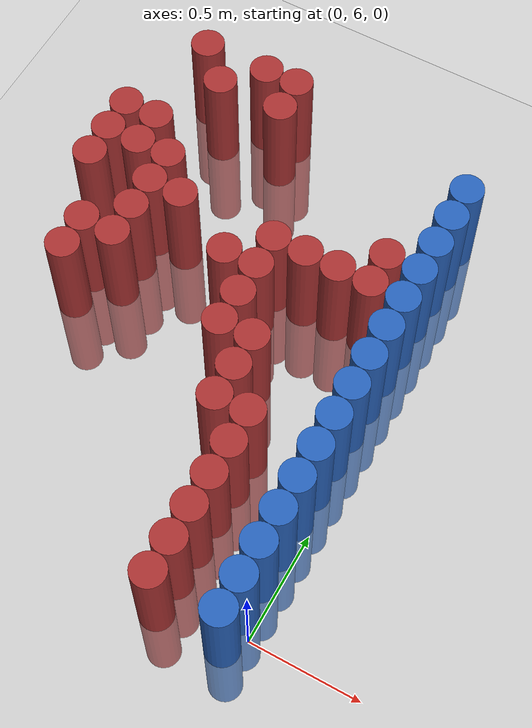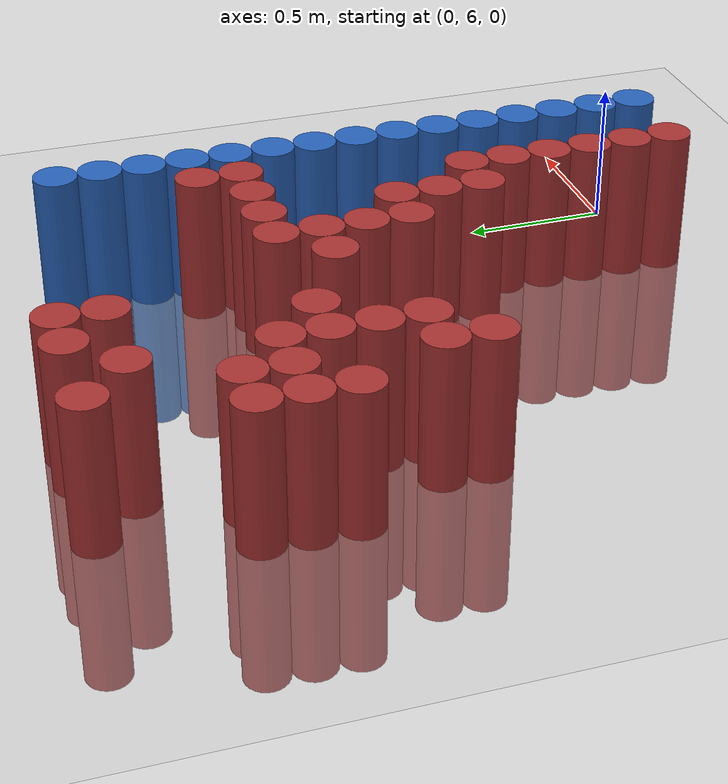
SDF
<sdf version="1.6">
 <world name="default">
  <model name="ground_plane">
   <static>1</static>
   <link name="link">
    <collision name="collision">
     <geometry><plane><normal>0 0 1</normal><size>100 100</size></plane></geometry>
     <surface><friction><ode><mu>100</mu><mu2>50</mu2></ode></friction></surface>
    </collision>
    <visual name="visual">
     <cast_shadows>0</cast_shadows>
     <geometry><plane><normal>0 0 1</normal><size>100 100</size></plane></geometry>
     <material>
      <script><uri>file://media/materials/scripts/gazebo.material</uri><name>Gazebo/Grey</name></script>
     </material>
    </visual>
   </link>
  </model>
  <model name="unit_cylinder_230">
   <static>1</static>
   <pose>-1.575000 7.425000 0.000000 0.000000 0.000000 0.000000</pose>
   <link name="link">
    <inertial>
     <mass>1</mass>
     <inertia><ixx>0.145833</ixx><ixy>0</ixy><ixz>0</ixz><iyy>0.145833</iyy><iyz>0</iyz><izz>0.125</izz></inertia>
    </inertial>
    <collision name="collision">
     <geometry><cylinder><radius>0.075000</radius><length>1</length></cylinder></geometry>
    </collision>
    <visual name="visual">
     <geometry><cylinder><radius>0.075000</radius><length>1</length></cylinder></geometry>
     <material>
      <ambient>0.648000 0.192000 0.192000 1</ambient>
      <diffuse>0.648000 0.192000 0.192000 1</diffuse>
     </material>
     <material>
      <script><name>Gazebo/Grey</name><uri>file://media/materials/scripts/gazebo.material</uri></script>
     </material>
    </visual>
   </link>
  </model>
  <model name="unit_cylinder_231">
   <static>1</static>
   <pose>-1.575000 7.575000 0.000000 0.000000 0.000000 0.000000</pose>
   <link name="link">
    <inertial>
     <mass>1</mass>
     <inertia><ixx>0.145833</ixx><ixy>0</ixy><ixz>0</ixz><iyy>0.145833</iyy><iyz>0</iyz><izz>0.125</izz></inertia>
    </inertial>
    <collision name="collision">
     <geometry><cylinder><radius>0.075000</radius><length>1</length></cylinder></geometry>
    </collision>
    <visual name="visual">
     <geometry><cylinder><radius>0.075000</radius><length>1</length></cylinder></geometry>
     <material>
      <ambient>0.648000 0.192000 0.192000 1</ambient>
      <diffuse>0.648000 0.192000 0.192000 1</diffuse>
     </material>
     <material>
      <script><name>Gazebo/Grey</name><uri>file://media/materials/scripts/gazebo.material</uri></script>
     </material>
    </visual>
   </link>
  </model>
  <model name="unit_cylinder_232">
   <static>1</static>
   <pose>-1.575000 7.725000 0.000000 0.000000 0.000000 0.000000</pose>
   <link name="link">
    <inertial>
     <mass>1</mass>
     <inertia><ixx>0.145833</ixx><ixy>0</ixy><ixz>0</ixz><iyy>0.145833</iyy><iyz>0</iyz><izz>0.125</izz></inertia>
    </inertial>
    <collision name="collision">
     <geometry><cylinder><radius>0.075000</radius><length>1</length></cylinder></geometry>
    </collision>
    <visual name="visual">
     <geometry><cylinder><radius>0.075000</radius><length>1</length></cylinder></geometry>
     <material>
      <ambient>0.648000 0.192000 0.192000 1</ambient>
      <diffuse>0.648000 0.192000 0.192000 1</diffuse>
     </material>
     <material>
      <script><name>Gazebo/Grey</name><uri>file://media/materials/scripts/gazebo.material</uri></script>
     </material>
    </visual>
   </link>
  </model>
  <model name="unit_cylinder_237">
   <static>1</static>
   <pose>-1.425000 6.975000 0.000000 0.000000 0.000000 0.000000</pose>
   <link name="link">
    <inertial>
     <mass>1</mass>
     <inertia><ixx>0.145833</ixx><ixy>0</ixy><ixz>0</ixz><iyy>0.145833</iyy><iyz>0</iyz><izz>0.125</izz></inertia>
    </inertial>
    <collision name="collision">
     <geometry><cylinder><radius>0.075000</radius><length>1</length></cylinder></geometry>
    </collision>
    <visual name="visual">
     <geometry><cylinder><radius>0.075000</radius><length>1</length></cylinder></geometry>
     <material>
      <ambient>0.648000 0.192000 0.192000 1</ambient>
      <diffuse>0.648000 0.192000 0.192000 1</diffuse>
     </material>
     <material>
      <script><name>Gazebo/Grey</name><uri>file://media/materials/scripts/gazebo.material</uri></script>
     </material>
    </visual>
   </link>
  </model>
  <model name="unit_cylinder_238">
   <static>1</static>
   <pose>-1.425000 7.125000 0.000000 0.000000 0.000000 0.000000</pose>
   <link name="link">
    <inertial>
     <mass>1</mass>
     <inertia><ixx>0.145833</ixx><ixy>0</ixy><ixz>0</ixz><iyy>0.145833</iyy><iyz>0</iyz><izz>0.125</izz></inertia>
    </inertial>
    <collision name="collision">
     <geometry><cylinder><radius>0.075000</radius><length>1</length></cylinder></geometry>
    </collision>
    <visual name="visual">
     <geometry><cylinder><radius>0.075000</radius><length>1</length></cylinder></geometry>
     <material>
      <ambient>0.648000 0.192000 0.192000 1</ambient>
      <diffuse>0.648000 0.192000 0.192000 1</diffuse>
     </material>
     <material>
      <script><name>Gazebo/Grey</name><uri>file://media/materials/scripts/gazebo.material</uri></script>
     </material>
    </visual>
   </link>
  </model>
  <model name="unit_cylinder_239">
   <static>1</static>
   <pose>-1.425000 7.575000 0.000000 0.000000 0.000000 0.000000</pose>
   <link name="link">
    <inertial>
     <mass>1</mass>
     <inertia><ixx>0.145833</ixx><ixy>0</ixy><ixz>0</ixz><iyy>0.145833</iyy><iyz>0</iyz><izz>0.125</izz></inertia>
    </inertial>
    <collision name="collision">
     <geometry><cylinder><radius>0.075000</radius><length>1</length></cylinder></geometry>
    </collision>
    <visual name="visual">
     <geometry><cylinder><radius>0.075000</radius><length>1</length></cylinder></geometry>
     <material>
      <ambient>0.648000 0.192000 0.192000 1</ambient>
      <diffuse>0.648000 0.192000 0.192000 1</diffuse>
     </material>
     <material>
      <script><name>Gazebo/Grey</name><uri>file://media/materials/scripts/gazebo.material</uri></script>
     </material>
    </visual>
   </link>
  </model>
  <model name="unit_cylinder_240">
   <static>1</static>
   <pose>-1.425000 7.725000 0.000000 0.000000 0.000000 0.000000</pose>
   <link name="link">
    <inertial>
     <mass>1</mass>
     <inertia><ixx>0.145833</ixx><ixy>0</ixy><ixz>0</ixz><iyy>0.145833</iyy><iyz>0</iyz><izz>0.125</izz></inertia>
    </inertial>
    <collision name="collision">
     <geometry><cylinder><radius>0.075000</radius><length>1</length></cylinder></geometry>
    </collision>
    <visual name="visual">
     <geometry><cylinder><radius>0.075000</radius><length>1</length></cylinder></geometry>
     <material>
      <ambient>0.648000 0.192000 0.192000 1</ambient>
      <diffuse>0.648000 0.192000 0.192000 1</diffuse>
     </material>
     <material>
      <script><name>Gazebo/Grey</name><uri>file://media/materials/scripts/gazebo.material</uri></script>
     </material>
    </visual>
   </link>
  </model>
  <model name="unit_cylinder_241">
   <static>1</static>
   <pose>-1.425000 8.175000 0.000000 0.000000 0.000000 0.000000</pose>
   <link name="link">
    <inertial>
     <mass>1</mass>
     <inertia><ixx>0.145833</ixx><ixy>0</ixy><ixz>0</ixz><iyy>0.145833</iyy><iyz>0</iyz><izz>0.125</izz></inertia>
    </inertial>
    <collision name="collision">
     <geometry><cylinder><radius>0.075000</radius><length>1</length></cylinder></geometry>
    </collision>
    <visual name="visual">
     <geometry><cylinder><radius>0.075000</radius><length>1</length></cylinder></geometry>
     <material>
      <ambient>0.648000 0.192000 0.192000 1</ambient>
      <diffuse>0.648000 0.192000 0.192000 1</diffuse>
     </material>
     <material>
      <script><name>Gazebo/Grey</name><uri>file://media/materials/scripts/gazebo.material</uri></script>
     </material>
    </visual>
   </link>
  </model>
  <model name="unit_cylinder_246">
   <static>1</static>
   <pose>-1.275000 7.125000 0.000000 0.000000 0.000000 0.000000</pose>
   <link name="link">
    <inertial>
     <mass>1</mass>
     <inertia><ixx>0.145833</ixx><ixy>0</ixy><ixz>0</ixz><iyy>0.145833</iyy><iyz>0</iyz><izz>0.125</izz></inertia>
    </inertial>
    <collision name="collision">
     <geometry><cylinder><radius>0.075000</radius><length>1</length></cylinder></geometry>
    </collision>
    <visual name="visual">
     <geometry><cylinder><radius>0.075000</radius><length>1</length></cylinder></geometry>
     <material>
      <ambient>0.648000 0.192000 0.192000 1</ambient>
      <diffuse>0.648000 0.192000 0.192000 1</diffuse>
     </material>
     <material>
      <script><name>Gazebo/Grey</name><uri>file://media/materials/scripts/gazebo.material</uri></script>
     </material>
    </visual>
   </link>
  </model>
  <model name="unit_cylinder_247">
   <static>1</static>
   <pose>-1.275000 7.275000 0.000000 0.000000 0.000000 0.000000</pose>
   <link name="link">
    <inertial>
     <mass>1</mass>
     <inertia><ixx>0.145833</ixx><ixy>0</ixy><ixz>0</ixz><iyy>0.145833</iyy><iyz>0</iyz><izz>0.125</izz></inertia>
    </inertial>
    <collision name="collision">
     <geometry><cylinder><radius>0.075000</radius><length>1</length></cylinder></geometry>
    </collision>
    <visual name="visual">
     <geometry><cylinder><radius>0.075000</radius><length>1</length></cylinder></geometry>
     <material>
      <ambient>0.648000 0.192000 0.192000 1</ambient>
      <diffuse>0.648000 0.192000 0.192000 1</diffuse>
     </material>
     <material>
      <script><name>Gazebo/Grey</name><uri>file://media/materials/scripts/gazebo.material</uri></script>
     </material>
    </visual>
   </link>
  </model>
  <model name="unit_cylinder_248">
   <static>1</static>
   <pose>-1.275000 7.425000 0.000000 0.000000 0.000000 0.000000</pose>
   <link name="link">
    <inertial>
     <mass>1</mass>
     <inertia><ixx>0.145833</ixx><ixy>0</ixy><ixz>0</ixz><iyy>0.145833</iyy><iyz>0</iyz><izz>0.125</izz></inertia>
    </inertial>
    <collision name="collision">
     <geometry><cylinder><radius>0.075000</radius><length>1</length></cylinder></geometry>
    </collision>
    <visual name="visual">
     <geometry><cylinder><radius>0.075000</radius><length>1</length></cylinder></geometry>
     <material>
      <ambient>0.648000 0.192000 0.192000 1</ambient>
      <diffuse>0.648000 0.192000 0.192000 1</diffuse>
     </material>
     <material>
      <script><name>Gazebo/Grey</name><uri>file://media/materials/scripts/gazebo.material</uri></script>
     </material>
    </visual>
   </link>
  </model>
  <model name="unit_cylinder_249">
   <static>1</static>
   <pose>-1.275000 7.575000 0.000000 0.000000 0.000000 0.000000</pose>
   <link name="link">
    <inertial>
     <mass>1</mass>
     <inertia><ixx>0.145833</ixx><ixy>0</ixy><ixz>0</ixz><iyy>0.145833</iyy><iyz>0</iyz><izz>0.125</izz></inertia>
    </inertial>
    <collision name="collision">
     <geometry><cylinder><radius>0.075000</radius><length>1</length></cylinder></geometry>
    </collision>
    <visual name="visual">
     <geometry><cylinder><radius>0.075000</radius><length>1</length></cylinder></geometry>
     <material>
      <ambient>0.648000 0.192000 0.192000 1</ambient>
      <diffuse>0.648000 0.192000 0.192000 1</diffuse>
     </material>
     <material>
      <script><name>Gazebo/Grey</name><uri>file://media/materials/scripts/gazebo.material</uri></script>
     </material>
    </visual>
   </link>
  </model>
  <model name="unit_cylinder_250">
   <static>1</static>
   <pose>-1.275000 8.025000 0.000000 0.000000 0.000000 0.000000</pose>
   <link name="link">
    <inertial>
     <mass>1</mass>
     <inertia><ixx>0.145833</ixx><ixy>0</ixy><ixz>0</ixz><iyy>0.145833</iyy><iyz>0</iyz><izz>0.125</izz></inertia>
    </inertial>
    <collision name="collision">
     <geometry><cylinder><radius>0.075000</radius><length>1</length></cylinder></geometry>
    </collision>
    <visual name="visual">
     <geometry><cylinder><radius>0.075000</radius><length>1</length></cylinder></geometry>
     <material>
      <ambient>0.648000 0.192000 0.192000 1</ambient>
      <diffuse>0.648000 0.192000 0.192000 1</diffuse>
     </material>
     <material>
      <script><name>Gazebo/Grey</name><uri>file://media/materials/scripts/gazebo.material</uri></script>
     </material>
    </visual>
   </link>
  </model>
  <model name="unit_cylinder_256">
   <static>1</static>
   <pose>-1.125000 7.425000 0.000000 0.000000 0.000000 0.000000</pose>
   <link name="link">
    <inertial>
     <mass>1</mass>
     <inertia><ixx>0.145833</ixx><ixy>0</ixy><ixz>0</ixz><iyy>0.145833</iyy><iyz>0</iyz><izz>0.125</izz></inertia>
    </inertial>
    <collision name="collision">
     <geometry><cylinder><radius>0.075000</radius><length>1</length></cylinder></geometry>
    </collision>
    <visual name="visual">
     <geometry><cylinder><radius>0.075000</radius><length>1</length></cylinder></geometry>
     <material>
      <ambient>0.648000 0.192000 0.192000 1</ambient>
      <diffuse>0.648000 0.192000 0.192000 1</diffuse>
     </material>
     <material>
      <script><name>Gazebo/Grey</name><uri>file://media/materials/scripts/gazebo.material</uri></script>
     </material>
    </visual>
   </link>
  </model>
  <model name="unit_cylinder_257">
   <static>1</static>
   <pose>-1.125000 8.175000 0.000000 0.000000 0.000000 0.000000</pose>
   <link name="link">
    <inertial>
     <mass>1</mass>
     <inertia><ixx>0.145833</ixx><ixy>0</ixy><ixz>0</ixz><iyy>0.145833</iyy><iyz>0</iyz><izz>0.125</izz></inertia>
    </inertial>
    <collision name="collision">
     <geometry><cylinder><radius>0.075000</radius><length>1</length></cylinder></geometry>
    </collision>
    <visual name="visual">
     <geometry><cylinder><radius>0.075000</radius><length>1</length></cylinder></geometry>
     <material>
      <ambient>0.648000 0.192000 0.192000 1</ambient>
      <diffuse>0.648000 0.192000 0.192000 1</diffuse>
     </material>
     <material>
      <script><name>Gazebo/Grey</name><uri>file://media/materials/scripts/gazebo.material</uri></script>
     </material>
    </visual>
   </link>
  </model>
  <model name="unit_cylinder_260">
   <static>1</static>
   <pose>-0.975000 8.025000 0.000000 0.000000 0.000000 0.000000</pose>
   <link name="link">
    <inertial>
     <mass>1</mass>
     <inertia><ixx>0.145833</ixx><ixy>0</ixy><ixz>0</ixz><iyy>0.145833</iyy><iyz>0</iyz><izz>0.125</izz></inertia>
    </inertial>
    <collision name="collision">
     <geometry><cylinder><radius>0.075000</radius><length>1</length></cylinder></geometry>
    </collision>
    <visual name="visual">
     <geometry><cylinder><radius>0.075000</radius><length>1</length></cylinder></geometry>
     <material>
      <ambient>0.648000 0.192000 0.192000 1</ambient>
      <diffuse>0.648000 0.192000 0.192000 1</diffuse>
     </material>
     <material>
      <script><name>Gazebo/Grey</name><uri>file://media/materials/scripts/gazebo.material</uri></script>
     </material>
    </visual>
   </link>
  </model>
  <model name="unit_cylinder_261">
   <static>1</static>
   <pose>-0.975000 8.175000 0.000000 0.000000 0.000000 0.000000</pose>
   <link name="link">
    <inertial>
     <mass>1</mass>
     <inertia><ixx>0.145833</ixx><ixy>0</ixy><ixz>0</ixz><iyy>0.145833</iyy><iyz>0</iyz><izz>0.125</izz></inertia>
    </inertial>
    <collision name="collision">
     <geometry><cylinder><radius>0.075000</radius><length>1</length></cylinder></geometry>
    </collision>
    <visual name="visual">
     <geometry><cylinder><radius>0.075000</radius><length>1</length></cylinder></geometry>
     <material>
      <ambient>0.648000 0.192000 0.192000 1</ambient>
      <diffuse>0.648000 0.192000 0.192000 1</diffuse>
     </material>
     <material>
      <script><name>Gazebo/Grey</name><uri>file://media/materials/scripts/gazebo.material</uri></script>
     </material>
    </visual>
   </link>
  </model>
  <model name="unit_cylinder_267">
   <static>1</static>
   <pose>-0.825000 7.275000 0.000000 0.000000 0.000000 0.000000</pose>
   <link name="link">
    <inertial>
     <mass>1</mass>
     <inertia><ixx>0.145833</ixx><ixy>0</ixy><ixz>0</ixz><iyy>0.145833</iyy><iyz>0</iyz><izz>0.125</izz></inertia>
    </inertial>
    <collision name="collision">
     <geometry><cylinder><radius>0.075000</radius><length>1</length></cylinder></geometry>
    </collision>
    <visual name="visual">
     <geometry><cylinder><radius>0.075000</radius><length>1</length></cylinder></geometry>
     <material>
      <ambient>0.648000 0.192000 0.192000 1</ambient>
      <diffuse>0.648000 0.192000 0.192000 1</diffuse>
     </material>
     <material>
      <script><name>Gazebo/Grey</name><uri>file://media/materials/scripts/gazebo.material</uri></script>
     </material>
    </visual>
   </link>
  </model>
  <model name="unit_cylinder_279">
   <static>1</static>
   <pose>-0.675000 6.975000 0.000000 0.000000 0.000000 0.000000</pose>
   <link name="link">
    <inertial>
     <mass>1</mass>
     <inertia><ixx>0.145833</ixx><ixy>0</ixy><ixz>0</ixz><iyy>0.145833</iyy><iyz>0</iyz><izz>0.125</izz></inertia>
    </inertial>
    <collision name="collision">
     <geometry><cylinder><radius>0.075000</radius><length>1</length></cylinder></geometry>
    </collision>
    <visual name="visual">
     <geometry><cylinder><radius>0.075000</radius><length>1</length></cylinder></geometry>
     <material>
      <ambient>0.648000 0.192000 0.192000 1</ambient>
      <diffuse>0.648000 0.192000 0.192000 1</diffuse>
     </material>
     <material>
      <script><name>Gazebo/Grey</name><uri>file://media/materials/scripts/gazebo.material</uri></script>
     </material>
    </visual>
   </link>
  </model>
  <model name="unit_cylinder_280">
   <static>1</static>
   <pose>-0.675000 7.125000 0.000000 0.000000 0.000000 0.000000</pose>
   <link name="link">
    <inertial>
     <mass>1</mass>
     <inertia><ixx>0.145833</ixx><ixy>0</ixy><ixz>0</ixz><iyy>0.145833</iyy><iyz>0</iyz><izz>0.125</izz></inertia>
    </inertial>
    <collision name="collision">
     <geometry><cylinder><radius>0.075000</radius><length>1</length></cylinder></geometry>
    </collision>
    <visual name="visual">
     <geometry><cylinder><radius>0.075000</radius><length>1</length></cylinder></geometry>
     <material>
      <ambient>0.648000 0.192000 0.192000 1</ambient>
      <diffuse>0.648000 0.192000 0.192000 1</diffuse>
     </material>
     <material>
      <script><name>Gazebo/Grey</name><uri>file://media/materials/scripts/gazebo.material</uri></script>
     </material>
    </visual>
   </link>
  </model>
  <model name="unit_cylinder_281">
   <static>1</static>
   <pose>-0.675000 7.275000 0.000000 0.000000 0.000000 0.000000</pose>
   <link name="link">
    <inertial>
     <mass>1</mass>
     <inertia><ixx>0.145833</ixx><ixy>0</ixy><ixz>0</ixz><iyy>0.145833</iyy><iyz>0</iyz><izz>0.125</izz></inertia>
    </inertial>
    <collision name="collision">
     <geometry><cylinder><radius>0.075000</radius><length>1</length></cylinder></geometry>
    </collision>
    <visual name="visual">
     <geometry><cylinder><radius>0.075000</radius><length>1</length></cylinder></geometry>
     <material>
      <ambient>0.648000 0.192000 0.192000 1</ambient>
      <diffuse>0.648000 0.192000 0.192000 1</diffuse>
     </material>
     <material>
      <script><name>Gazebo/Grey</name><uri>file://media/materials/scripts/gazebo.material</uri></script>
     </material>
    </visual>
   </link>
  </model>
  <model name="unit_cylinder_282">
   <static>1</static>
   <pose>-0.675000 7.425000 0.000000 0.000000 0.000000 0.000000</pose>
   <link name="link">
    <inertial>
     <mass>1</mass>
     <inertia><ixx>0.145833</ixx><ixy>0</ixy><ixz>0</ixz><iyy>0.145833</iyy><iyz>0</iyz><izz>0.125</izz></inertia>
    </inertial>
    <collision name="collision">
     <geometry><cylinder><radius>0.075000</radius><length>1</length></cylinder></geometry>
    </collision>
    <visual name="visual">
     <geometry><cylinder><radius>0.075000</radius><length>1</length></cylinder></geometry>
     <material>
      <ambient>0.648000 0.192000 0.192000 1</ambient>
      <diffuse>0.648000 0.192000 0.192000 1</diffuse>
     </material>
     <material>
      <script><name>Gazebo/Grey</name><uri>file://media/materials/scripts/gazebo.material</uri></script>
     </material>
    </visual>
   </link>
  </model>
  <model name="unit_cylinder_290">
   <static>1</static>
   <pose>-0.525000 6.675000 0.000000 0.000000 0.000000 0.000000</pose>
   <link name="link">
    <inertial>
     <mass>1</mass>
     <inertia><ixx>0.145833</ixx><ixy>0</ixy><ixz>0</ixz><iyy>0.145833</iyy><iyz>0</iyz><izz>0.125</izz></inertia>
    </inertial>
    <collision name="collision">
     <geometry><cylinder><radius>0.075000</radius><length>1</length></cylinder></geometry>
    </collision>
    <visual name="visual">
     <geometry><cylinder><radius>0.075000</radius><length>1</length></cylinder></geometry>
     <material>
      <ambient>0.648000 0.192000 0.192000 1</ambient>
      <diffuse>0.648000 0.192000 0.192000 1</diffuse>
     </material>
     <material>
      <script><name>Gazebo/Grey</name><uri>file://media/materials/scripts/gazebo.material</uri></script>
     </material>
    </visual>
   </link>
  </model>
  <model name="unit_cylinder_291">
   <static>1</static>
   <pose>-0.525000 6.825000 0.000000 0.000000 0.000000 0.000000</pose>
   <link name="link">
    <inertial>
     <mass>1</mass>
     <inertia><ixx>0.145833</ixx><ixy>0</ixy><ixz>0</ixz><iyy>0.145833</iyy><iyz>0</iyz><izz>0.125</izz></inertia>
    </inertial>
    <collision name="collision">
     <geometry><cylinder><radius>0.075000</radius><length>1</length></cylinder></geometry>
    </collision>
    <visual name="visual">
     <geometry><cylinder><radius>0.075000</radius><length>1</length></cylinder></geometry>
     <material>
      <ambient>0.648000 0.192000 0.192000 1</ambient>
      <diffuse>0.648000 0.192000 0.192000 1</diffuse>
     </material>
     <material>
      <script><name>Gazebo/Grey</name><uri>file://media/materials/scripts/gazebo.material</uri></script>
     </material>
    </visual>
   </link>
  </model>
  <model name="unit_cylinder_292">
   <static>1</static>
   <pose>-0.525000 6.975000 0.000000 0.000000 0.000000 0.000000</pose>
   <link name="link">
    <inertial>
     <mass>1</mass>
     <inertia><ixx>0.145833</ixx><ixy>0</ixy><ixz>0</ixz><iyy>0.145833</iyy><iyz>0</iyz><izz>0.125</izz></inertia>
    </inertial>
    <collision name="collision">
     <geometry><cylinder><radius>0.075000</radius><length>1</length></cylinder></geometry>
    </collision>
    <visual name="visual">
     <geometry><cylinder><radius>0.075000</radius><length>1</length></cylinder></geometry>
     <material>
      <ambient>0.648000 0.192000 0.192000 1</ambient>
      <diffuse>0.648000 0.192000 0.192000 1</diffuse>
     </material>
     <material>
      <script><name>Gazebo/Grey</name><uri>file://media/materials/scripts/gazebo.material</uri></script>
     </material>
    </visual>
   </link>
  </model>
  <model name="unit_cylinder_293">
   <static>1</static>
   <pose>-0.525000 7.425000 0.000000 0.000000 0.000000 0.000000</pose>
   <link name="link">
    <inertial>
     <mass>1</mass>
     <inertia><ixx>0.145833</ixx><ixy>0</ixy><ixz>0</ixz><iyy>0.145833</iyy><iyz>0</iyz><izz>0.125</izz></inertia>
    </inertial>
    <collision name="collision">
     <geometry><cylinder><radius>0.075000</radius><length>1</length></cylinder></geometry>
    </collision>
    <visual name="visual">
     <geometry><cylinder><radius>0.075000</radius><length>1</length></cylinder></geometry>
     <material>
      <ambient>0.648000 0.192000 0.192000 1</ambient>
      <diffuse>0.648000 0.192000 0.192000 1</diffuse>
     </material>
     <material>
      <script><name>Gazebo/Grey</name><uri>file://media/materials/scripts/gazebo.material</uri></script>
     </material>
    </visual>
   </link>
  </model>
  <model name="unit_cylinder_299">
   <static>1</static>
   <pose>-0.375000 5.925000 0.000000 0.000000 0.000000 0.000000</pose>
   <link name="link">
    <inertial>
     <mass>1</mass>
     <inertia><ixx>0.145833</ixx><ixy>0</ixy><ixz>0</ixz><iyy>0.145833</iyy><iyz>0</iyz><izz>0.125</izz></inertia>
    </inertial>
    <collision name="collision">
     <geometry><cylinder><radius>0.075000</radius><length>1</length></cylinder></geometry>
    </collision>
    <visual name="visual">
     <geometry><cylinder><radius>0.075000</radius><length>1</length></cylinder></geometry>
     <material>
      <ambient>0.648000 0.192000 0.192000 1</ambient>
      <diffuse>0.648000 0.192000 0.192000 1</diffuse>
     </material>
     <material>
      <script><name>Gazebo/Grey</name><uri>file://media/materials/scripts/gazebo.material</uri></script>
     </material>
    </visual>
   </link>
  </model>
  <model name="unit_cylinder_300">
   <static>1</static>
   <pose>-0.375000 6.075000 0.000000 0.000000 0.000000 0.000000</pose>
   <link name="link">
    <inertial>
     <mass>1</mass>
     <inertia><ixx>0.145833</ixx><ixy>0</ixy><ixz>0</ixz><iyy>0.145833</iyy><iyz>0</iyz><izz>0.125</izz></inertia>
    </inertial>
    <collision name="collision">
     <geometry><cylinder><radius>0.075000</radius><length>1</length></cylinder></geometry>
    </collision>
    <visual name="visual">
     <geometry><cylinder><radius>0.075000</radius><length>1</length></cylinder></geometry>
     <material>
      <ambient>0.648000 0.192000 0.192000 1</ambient>
      <diffuse>0.648000 0.192000 0.192000 1</diffuse>
     </material>
     <material>
      <script><name>Gazebo/Grey</name><uri>file://media/materials/scripts/gazebo.material</uri></script>
     </material>
    </visual>
   </link>
  </model>
  <model name="unit_cylinder_301">
   <static>1</static>
   <pose>-0.375000 6.225000 0.000000 0.000000 0.000000 0.000000</pose>
   <link name="link">
    <inertial>
     <mass>1</mass>
     <inertia><ixx>0.145833</ixx><ixy>0</ixy><ixz>0</ixz><iyy>0.145833</iyy><iyz>0</iyz><izz>0.125</izz></inertia>
    </inertial>
    <collision name="collision">
     <geometry><cylinder><radius>0.075000</radius><length>1</length></cylinder></geometry>
    </collision>
    <visual name="visual">
     <geometry><cylinder><radius>0.075000</radius><length>1</length></cylinder></geometry>
     <material>
      <ambient>0.648000 0.192000 0.192000 1</ambient>
      <diffuse>0.648000 0.192000 0.192000 1</diffuse>
     </material>
     <material>
      <script><name>Gazebo/Grey</name><uri>file://media/materials/scripts/gazebo.material</uri></script>
     </material>
    </visual>
   </link>
  </model>
  <model name="unit_cylinder_302">
   <static>1</static>
   <pose>-0.375000 6.375000 0.000000 0.000000 0.000000 0.000000</pose>
   <link name="link">
    <inertial>
     <mass>1</mass>
     <inertia><ixx>0.145833</ixx><ixy>0</ixy><ixz>0</ixz><iyy>0.145833</iyy><iyz>0</iyz><izz>0.125</izz></inertia>
    </inertial>
    <collision name="collision">
     <geometry><cylinder><radius>0.075000</radius><length>1</length></cylinder></geometry>
    </collision>
    <visual name="visual">
     <geometry><cylinder><radius>0.075000</radius><length>1</length></cylinder></geometry>
     <material>
      <ambient>0.648000 0.192000 0.192000 1</ambient>
      <diffuse>0.648000 0.192000 0.192000 1</diffuse>
     </material>
     <material>
      <script><name>Gazebo/Grey</name><uri>file://media/materials/scripts/gazebo.material</uri></script>
     </material>
    </visual>
   </link>
  </model>
  <model name="unit_cylinder_303">
   <static>1</static>
   <pose>-0.375000 6.525000 0.000000 0.000000 0.000000 0.000000</pose>
   <link name="link">
    <inertial>
     <mass>1</mass>
     <inertia><ixx>0.145833</ixx><ixy>0</ixy><ixz>0</ixz><iyy>0.145833</iyy><iyz>0</iyz><izz>0.125</izz></inertia>
    </inertial>
    <collision name="collision">
     <geometry><cylinder><radius>0.075000</radius><length>1</length></cylinder></geometry>
    </collision>
    <visual name="visual">
     <geometry><cylinder><radius>0.075000</radius><length>1</length></cylinder></geometry>
     <material>
      <ambient>0.648000 0.192000 0.192000 1</ambient>
      <diffuse>0.648000 0.192000 0.192000 1</diffuse>
     </material>
     <material>
      <script><name>Gazebo/Grey</name><uri>file://media/materials/scripts/gazebo.material</uri></script>
     </material>
    </visual>
   </link>
  </model>
  <model name="unit_cylinder_304">
   <static>1</static>
   <pose>-0.375000 6.675000 0.000000 0.000000 0.000000 0.000000</pose>
   <link name="link">
    <inertial>
     <mass>1</mass>
     <inertia><ixx>0.145833</ixx><ixy>0</ixy><ixz>0</ixz><iyy>0.145833</iyy><iyz>0</iyz><izz>0.125</izz></inertia>
    </inertial>
    <collision name="collision">
     <geometry><cylinder><radius>0.075000</radius><length>1</length></cylinder></geometry>
    </collision>
    <visual name="visual">
     <geometry><cylinder><radius>0.075000</radius><length>1</length></cylinder></geometry>
     <material>
      <ambient>0.648000 0.192000 0.192000 1</ambient>
      <diffuse>0.648000 0.192000 0.192000 1</diffuse>
     </material>
     <material>
      <script><name>Gazebo/Grey</name><uri>file://media/materials/scripts/gazebo.material</uri></script>
     </material>
    </visual>
   </link>
  </model>
  <model name="unit_cylinder_305">
   <static>1</static>
   <pose>-0.375000 7.425000 0.000000 0.000000 0.000000 0.000000</pose>
   <link name="link">
    <inertial>
     <mass>1</mass>
     <inertia><ixx>0.145833</ixx><ixy>0</ixy><ixz>0</ixz><iyy>0.145833</iyy><iyz>0</iyz><izz>0.125</izz></inertia>
    </inertial>
    <collision name="collision">
     <geometry><cylinder><radius>0.075000</radius><length>1</length></cylinder></geometry>
    </collision>
    <visual name="visual">
     <geometry><cylinder><radius>0.075000</radius><length>1</length></cylinder></geometry>
     <material>
      <ambient>0.648000 0.192000 0.192000 1</ambient>
      <diffuse>0.648000 0.192000 0.192000 1</diffuse>
     </material>
     <material>
      <script><name>Gazebo/Grey</name><uri>file://media/materials/scripts/gazebo.material</uri></script>
     </material>
    </visual>
   </link>
  </model>
  <model name="unit_cylinder_311">
   <static>1</static>
   <pose>-0.225000 7.425000 0.000000 0.000000 0.000000 0.000000</pose>
   <link name="link">
    <inertial>
     <mass>1</mass>
     <inertia><ixx>0.145833</ixx><ixy>0</ixy><ixz>0</ixz><iyy>0.145833</iyy><iyz>0</iyz><izz>0.125</izz></inertia>
    </inertial>
    <collision name="collision">
     <geometry><cylinder><radius>0.075000</radius><length>1</length></cylinder></geometry>
    </collision>
    <visual name="visual">
     <geometry><cylinder><radius>0.075000</radius><length>1</length></cylinder></geometry>
     <material>
      <ambient>0.648000 0.192000 0.192000 1</ambient>
      <diffuse>0.648000 0.192000 0.192000 1</diffuse>
     </material>
     <material>
      <script><name>Gazebo/Grey</name><uri>file://media/materials/scripts/gazebo.material</uri></script>
     </material>
    </visual>
   </link>
  </model>
  <model name="unit_cylinder_312">
   <static>1</static>
   <pose>-0.225000 7.575000 0.000000 0.000000 0.000000 0.000000</pose>
   <link name="link">
    <inertial>
     <mass>1</mass>
     <inertia><ixx>0.145833</ixx><ixy>0</ixy><ixz>0</ixz><iyy>0.145833</iyy><iyz>0</iyz><izz>0.125</izz></inertia>
    </inertial>
    <collision name="collision">
     <geometry><cylinder><radius>0.075000</radius><length>1</length></cylinder></geometry>
    </collision>
    <visual name="visual">
     <geometry><cylinder><radius>0.075000</radius><length>1</length></cylinder></geometry>
     <material>
      <ambient>0.648000 0.192000 0.192000 1</ambient>
      <diffuse>0.648000 0.192000 0.192000 1</diffuse>
     </material>
     <material>
      <script><name>Gazebo/Grey</name><uri>file://media/materials/scripts/gazebo.material</uri></script>
     </material>
    </visual>
   </link>
  </model>
  <model name="unit_cylinder_322">
   <static>1</static>
   <pose>-0.075000 5.925000 0.000000 0.000000 0.000000 0.000000</pose>
   <link name="link">
    <inertial>
     <mass>1</mass>
     <inertia><ixx>0.145833</ixx><ixy>0</ixy><ixz>0</ixz><iyy>0.145833</iyy><iyz>0</iyz><izz>0.125</izz></inertia>
    </inertial>
    <collision name="collision">
     <geometry><cylinder><radius>0.075000</radius><length>1</length></cylinder></geometry>
    </collision>
    <visual name="visual">
     <geometry><cylinder><radius>0.075000</radius><length>1</length></cylinder></geometry>
     <material>
      <ambient>0.152000 0.379000 0.720000 1</ambient>
      <diffuse>0.152000 0.379000 0.720000 1</diffuse>
     </material>
     <material>
      <script><name>Gazebo/Grey</name><uri>file://media/materials/scripts/gazebo.material</uri></script>
     </material>
    </visual>
   </link>
  </model>
  <model name="unit_cylinder_323">
   <static>1</static>
   <pose>-0.075000 6.075000 0.000000 0.000000 0.000000 0.000000</pose>
   <link name="link">
    <inertial>
     <mass>1</mass>
     <inertia><ixx>0.145833</ixx><ixy>0</ixy><ixz>0</ixz><iyy>0.145833</iyy><iyz>0</iyz><izz>0.125</izz></inertia>
    </inertial>
    <collision name="collision">
     <geometry><cylinder><radius>0.075000</radius><length>1</length></cylinder></geometry>
    </collision>
    <visual name="visual">
     <geometry><cylinder><radius>0.075000</radius><length>1</length></cylinder></geometry>
     <material>
      <ambient>0.152000 0.379000 0.720000 1</ambient>
      <diffuse>0.152000 0.379000 0.720000 1</diffuse>
     </material>
     <material>
      <script><name>Gazebo/Grey</name><uri>file://media/materials/scripts/gazebo.material</uri></script>
     </material>
    </visual>
   </link>
  </model>
  <model name="unit_cylinder_324">
   <static>1</static>
   <pose>-0.075000 6.225000 0.000000 0.000000 0.000000 0.000000</pose>
   <link name="link">
    <inertial>
     <mass>1</mass>
     <inertia><ixx>0.145833</ixx><ixy>0</ixy><ixz>0</ixz><iyy>0.145833</iyy><iyz>0</iyz><izz>0.125</izz></inertia>
    </inertial>
    <collision name="collision">
     <geometry><cylinder><radius>0.075000</radius><length>1</length></cylinder></geometry>
    </collision>
    <visual name="visual">
     <geometry><cylinder><radius>0.075000</radius><length>1</length></cylinder></geometry>
     <material>
      <ambient>0.152000 0.379000 0.720000 1</ambient>
      <diffuse>0.152000 0.379000 0.720000 1</diffuse>
     </material>
     <material>
      <script><name>Gazebo/Grey</name><uri>file://media/materials/scripts/gazebo.material</uri></script>
     </material>
    </visual>
   </link>
  </model>
  <model name="unit_cylinder_325">
   <static>1</static>
   <pose>-0.075000 6.375000 0.000000 0.000000 0.000000 0.000000</pose>
   <link name="link">
    <inertial>
     <mass>1</mass>
     <inertia><ixx>0.145833</ixx><ixy>0</ixy><ixz>0</ixz><iyy>0.145833</iyy><iyz>0</iyz><izz>0.125</izz></inertia>
    </inertial>
    <collision name="collision">
     <geometry><cylinder><radius>0.075000</radius><length>1</length></cylinder></geometry>
    </collision>
    <visual name="visual">
     <geometry><cylinder><radius>0.075000</radius><length>1</length></cylinder></geometry>
     <material>
      <ambient>0.152000 0.379000 0.720000 1</ambient>
      <diffuse>0.152000 0.379000 0.720000 1</diffuse>
     </material>
     <material>
      <script><name>Gazebo/Grey</name><uri>file://media/materials/scripts/gazebo.material</uri></script>
     </material>
    </visual>
   </link>
  </model>
  <model name="unit_cylinder_326">
   <static>1</static>
   <pose>-0.075000 6.525000 0.000000 0.000000 0.000000 0.000000</pose>
   <link name="link">
    <inertial>
     <mass>1</mass>
     <inertia><ixx>0.145833</ixx><ixy>0</ixy><ixz>0</ixz><iyy>0.145833</iyy><iyz>0</iyz><izz>0.125</izz></inertia>
    </inertial>
    <collision name="collision">
     <geometry><cylinder><radius>0.075000</radius><length>1</length></cylinder></geometry>
    </collision>
    <visual name="visual">
     <geometry><cylinder><radius>0.075000</radius><length>1</length></cylinder></geometry>
     <material>
      <ambient>0.152000 0.379000 0.720000 1</ambient>
      <diffuse>0.152000 0.379000 0.720000 1</diffuse>
     </material>
     <material>
      <script><name>Gazebo/Grey</name><uri>file://media/materials/scripts/gazebo.material</uri></script>
     </material>
    </visual>
   </link>
  </model>
  <model name="unit_cylinder_327">
   <static>1</static>
   <pose>-0.075000 6.675000 0.000000 0.000000 0.000000 0.000000</pose>
   <link name="link">
    <inertial>
     <mass>1</mass>
     <inertia><ixx>0.145833</ixx><ixy>0</ixy><ixz>0</ixz><iyy>0.145833</iyy><iyz>0</iyz><izz>0.125</izz></inertia>
    </inertial>
    <collision name="collision">
     <geometry><cylinder><radius>0.075000</radius><length>1</length></cylinder></geometry>
    </collision>
    <visual name="visual">
     <geometry><cylinder><radius>0.075000</radius><length>1</length></cylinder></geometry>
     <material>
      <ambient>0.152000 0.379000 0.720000 1</ambient>
      <diffuse>0.152000 0.379000 0.720000 1</diffuse>
     </material>
     <material>
      <script><name>Gazebo/Grey</name><uri>file://media/materials/scripts/gazebo.material</uri></script>
     </material>
    </visual>
   </link>
  </model>
  <model name="unit_cylinder_328">
   <static>1</static>
   <pose>-0.075000 6.825000 0.000000 0.000000 0.000000 0.000000</pose>
   <link name="link">
    <inertial>
     <mass>1</mass>
     <inertia><ixx>0.145833</ixx><ixy>0</ixy><ixz>0</ixz><iyy>0.145833</iyy><iyz>0</iyz><izz>0.125</izz></inertia>
    </inertial>
    <collision name="collision">
     <geometry><cylinder><radius>0.075000</radius><length>1</length></cylinder></geometry>
    </collision>
    <visual name="visual">
     <geometry><cylinder><radius>0.075000</radius><length>1</length></cylinder></geometry>
     <material>
      <ambient>0.152000 0.379000 0.720000 1</ambient>
      <diffuse>0.152000 0.379000 0.720000 1</diffuse>
     </material>
     <material>
      <script><name>Gazebo/Grey</name><uri>file://media/materials/scripts/gazebo.material</uri></script>
     </material>
    </visual>
   </link>
  </model>
  <model name="unit_cylinder_329">
   <static>1</static>
   <pose>-0.075000 6.975000 0.000000 0.000000 0.000000 0.000000</pose>
   <link name="link">
    <inertial>
     <mass>1</mass>
     <inertia><ixx>0.145833</ixx><ixy>0</ixy><ixz>0</ixz><iyy>0.145833</iyy><iyz>0</iyz><izz>0.125</izz></inertia>
    </inertial>
    <collision name="collision">
     <geometry><cylinder><radius>0.075000</radius><length>1</length></cylinder></geometry>
    </collision>
    <visual name="visual">
     <geometry><cylinder><radius>0.075000</radius><length>1</length></cylinder></geometry>
     <material>
      <ambient>0.152000 0.379000 0.720000 1</ambient>
      <diffuse>0.152000 0.379000 0.720000 1</diffuse>
     </material>
     <material>
      <script><name>Gazebo/Grey</name><uri>file://media/materials/scripts/gazebo.material</uri></script>
     </material>
    </visual>
   </link>
  </model>
  <model name="unit_cylinder_330">
   <static>1</static>
   <pose>-0.075000 7.125000 0.000000 0.000000 0.000000 0.000000</pose>
   <link name="link">
    <inertial>
     <mass>1</mass>
     <inertia><ixx>0.145833</ixx><ixy>0</ixy><ixz>0</ixz><iyy>0.145833</iyy><iyz>0</iyz><izz>0.125</izz></inertia>
    </inertial>
    <collision name="collision">
     <geometry><cylinder><radius>0.075000</radius><length>1</length></cylinder></geometry>
    </collision>
    <visual name="visual">
     <geometry><cylinder><radius>0.075000</radius><length>1</length></cylinder></geometry>
     <material>
      <ambient>0.152000 0.379000 0.720000 1</ambient>
      <diffuse>0.152000 0.379000 0.720000 1</diffuse>
     </material>
     <material>
      <script><name>Gazebo/Grey</name><uri>file://media/materials/scripts/gazebo.material</uri></script>
     </material>
    </visual>
   </link>
  </model>
  <model name="unit_cylinder_331">
   <static>1</static>
   <pose>-0.075000 7.275000 0.000000 0.000000 0.000000 0.000000</pose>
   <link name="link">
    <inertial>
     <mass>1</mass>
     <inertia><ixx>0.145833</ixx><ixy>0</ixy><ixz>0</ixz><iyy>0.145833</iyy><iyz>0</iyz><izz>0.125</izz></inertia>
    </inertial>
    <collision name="collision">
     <geometry><cylinder><radius>0.075000</radius><length>1</length></cylinder></geometry>
    </collision>
    <visual name="visual">
     <geometry><cylinder><radius>0.075000</radius><length>1</length></cylinder></geometry>
     <material>
      <ambient>0.152000 0.379000 0.720000 1</ambient>
      <diffuse>0.152000 0.379000 0.720000 1</diffuse>
     </material>
     <material>
      <script><name>Gazebo/Grey</name><uri>file://media/materials/scripts/gazebo.material</uri></script>
     </material>
    </visual>
   </link>
  </model>
  <model name="unit_cylinder_332">
   <static>1</static>
   <pose>-0.075000 7.425000 0.000000 0.000000 0.000000 0.000000</pose>
   <link name="link">
    <inertial>
     <mass>1</mass>
     <inertia><ixx>0.145833</ixx><ixy>0</ixy><ixz>0</ixz><iyy>0.145833</iyy><iyz>0</iyz><izz>0.125</izz></inertia>
    </inertial>
    <collision name="collision">
     <geometry><cylinder><radius>0.075000</radius><length>1</length></cylinder></geometry>
    </collision>
    <visual name="visual">
     <geometry><cylinder><radius>0.075000</radius><length>1</length></cylinder></geometry>
     <material>
      <ambient>0.152000 0.379000 0.720000 1</ambient>
      <diffuse>0.152000 0.379000 0.720000 1</diffuse>
     </material>
     <material>
      <script><name>Gazebo/Grey</name><uri>file://media/materials/scripts/gazebo.material</uri></script>
     </material>
    </visual>
   </link>
  </model>
  <model name="unit_cylinder_333">
   <static>1</static>
   <pose>-0.075000 7.575000 0.000000 0.000000 0.000000 0.000000</pose>
   <link name="link">
    <inertial>
     <mass>1</mass>
     <inertia><ixx>0.145833</ixx><ixy>0</ixy><ixz>0</ixz><iyy>0.145833</iyy><iyz>0</iyz><izz>0.125</izz></inertia>
    </inertial>
    <collision name="collision">
     <geometry><cylinder><radius>0.075000</radius><length>1</length></cylinder></geometry>
    </collision>
    <visual name="visual">
     <geometry><cylinder><radius>0.075000</radius><length>1</length></cylinder></geometry>
     <material>
      <ambient>0.152000 0.379000 0.720000 1</ambient>
      <diffuse>0.152000 0.379000 0.720000 1</diffuse>
     </material>
     <material>
      <script><name>Gazebo/Grey</name><uri>file://media/materials/scripts/gazebo.material</uri></script>
     </material>
    </visual>
   </link>
  </model>
  <model name="unit_cylinder_334">
   <static>1</static>
   <pose>-0.075000 7.725000 0.000000 0.000000 0.000000 0.000000</pose>
   <link name="link">
    <inertial>
     <mass>1</mass>
     <inertia><ixx>0.145833</ixx><ixy>0</ixy><ixz>0</ixz><iyy>0.145833</iyy><iyz>0</iyz><izz>0.125</izz></inertia>
    </inertial>
    <collision name="collision">
     <geometry><cylinder><radius>0.075000</radius><length>1</length></cylinder></geometry>
    </collision>
    <visual name="visual">
     <geometry><cylinder><radius>0.075000</radius><length>1</length></cylinder></geometry>
     <material>
      <ambient>0.152000 0.379000 0.720000 1</ambient>
      <diffuse>0.152000 0.379000 0.720000 1</diffuse>
     </material>
     <material>
      <script><name>Gazebo/Grey</name><uri>file://media/materials/scripts/gazebo.material</uri></script>
     </material>
    </visual>
   </link>
  </model>
  <model name="unit_cylinder_335">
   <static>1</static>
   <pose>-0.075000 7.875000 0.000000 0.000000 0.000000 0.000000</pose>
   <link name="link">
    <inertial>
     <mass>1</mass>
     <inertia><ixx>0.145833</ixx><ixy>0</ixy><ixz>0</ixz><iyy>0.145833</iyy><iyz>0</iyz><izz>0.125</izz></inertia>
    </inertial>
    <collision name="collision">
     <geometry><cylinder><radius>0.075000</radius><length>1</length></cylinder></geometry>
    </collision>
    <visual name="visual">
     <geometry><cylinder><radius>0.075000</radius><length>1</length></cylinder></geometry>
     <material>
      <ambient>0.152000 0.379000 0.720000 1</ambient>
      <diffuse>0.152000 0.379000 0.720000 1</diffuse>
     </material>
     <material>
      <script><name>Gazebo/Grey</name><uri>file://media/materials/scripts/gazebo.material</uri></script>
     </material>
    </visual>
   </link>
  </model>
  <model name="unit_cylinder_336">
   <static>1</static>
   <pose>-0.075000 8.025000 0.000000 0.000000 0.000000 0.000000</pose>
   <link name="link">
    <inertial>
     <mass>1</mass>
     <inertia><ixx>0.145833</ixx><ixy>0</ixy><ixz>0</ixz><iyy>0.145833</iyy><iyz>0</iyz><izz>0.125</izz></inertia>
    </inertial>
    <collision name="collision">
     <geometry><cylinder><radius>0.075000</radius><length>1</length></cylinder></geometry>
    </collision>
    <visual name="visual">
     <geometry><cylinder><radius>0.075000</radius><length>1</length></cylinder></geometry>
     <material>
      <ambient>0.152000 0.379000 0.720000 1</ambient>
      <diffuse>0.152000 0.379000 0.720000 1</diffuse>
     </material>
     <material>
      <script><name>Gazebo/Grey</name><uri>file://media/materials/scripts/gazebo.material</uri></script>
     </material>
    </visual>
   </link>
  </model>
 </world>
</sdf>
